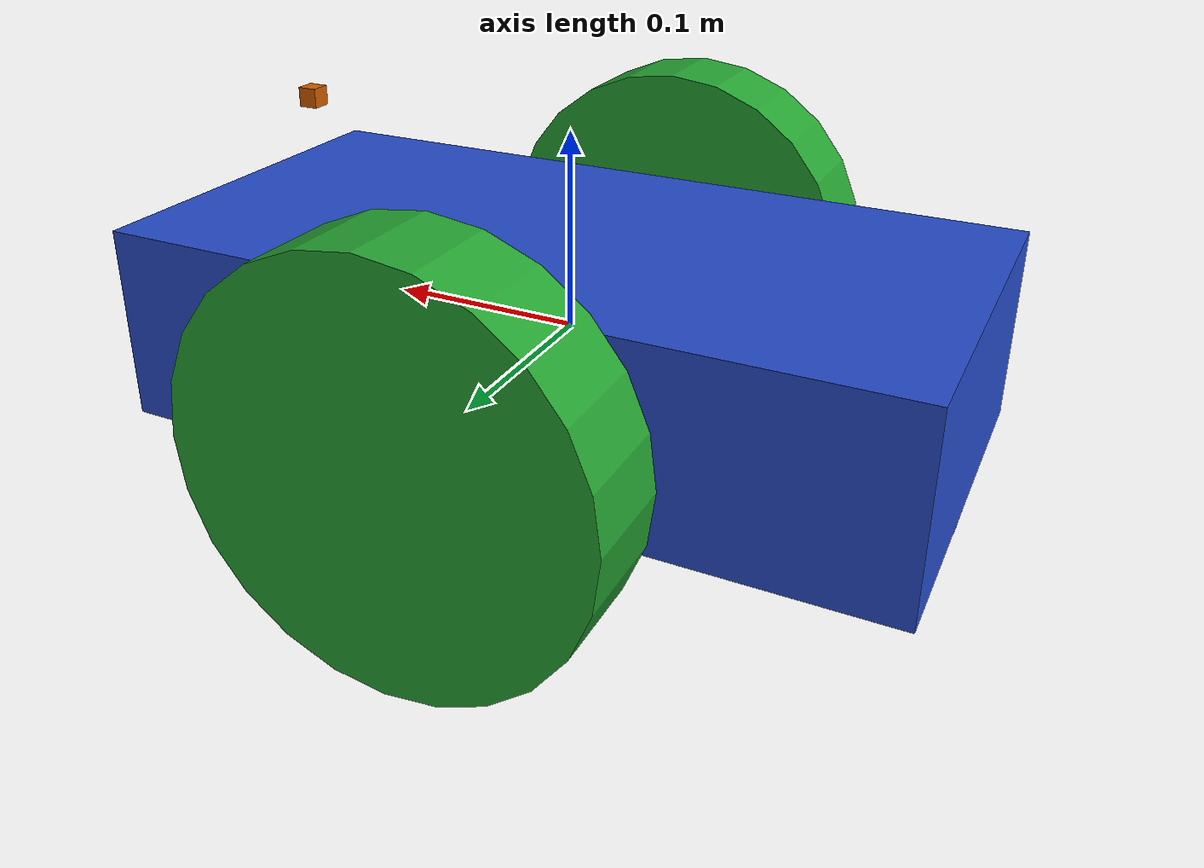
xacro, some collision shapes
<?xml version='1.0'?>

<robot name="udacity_bot" xmlns:xacro="http://www.ros.org/wiki/xacro">
<xacro:include filename="$(find udacity_bot)/urdf/udacity_bot.gazebo" />
<xacro:include filename="$(find udacity_bot)/urdf/udacity_materials.xacro" />

  <link name="robot_footprint"></link>

  <joint name="robot_footprint_joint" type="fixed">
    <origin xyz="0 0 0" rpy="0 0 0" />
    <parent link="robot_footprint"/>
    <child link="chassis" />
  </joint>

  <!-- chassis link -->
  <link name='chassis'>
    <pose>0 0 0.1 0 0 0</pose>

    <inertial>
      <mass value="15.0"/>
      <origin xyz="0.0 0 0" rpy=" 0 0 0"/>
      <inertia
          ixx="0.1" ixy="0" ixz="0"
          iyy="0.1" iyz="0"
          izz="0.1"
      />
    </inertial>

    <collision name='collision'>
      <origin xyz="0 0 0" rpy=" 0 0 0"/>
      <geometry>
        <box size=".4 .2 .1"/>
      </geometry>
    </collision>

    <visual name='chassis_visual'>
      <origin xyz="0 0 0" rpy=" 0 0 0"/>
      <geometry>
        <box size=".4 .2 .1"/>
      </geometry>
      <material name="blue"/>
    </visual>

    <collision name='back_caster_collision'>
      <origin xyz="-0.15 0 -0.05" rpy=" 0 0 0"/>
      <geometry>
        <sphere radius="0.05"/>
      </geometry>
      <surface>
        <friction>
          <ode>
            <mu>0</mu>
            <mu2>0</mu2>
            <slip1>1.0</slip1>
            <slip2>1.0</slip2>
          </ode>
        </friction>
      </surface>
    </collision>

    <visual name='back_caster_visual'>
      <origin xyz="-0.15 0 -0.05" rpy=" 0 0 0"/>
      <geometry>
        <sphere radius="0.05"/>
      </geometry>
    </visual>

    <collision name='front_caster_collision'>
      <origin xyz="0.15 0 -0.05" rpy=" 0 0 0"/>
      <geometry>
        <sphere radius="0.05"/>
      </geometry>
      <surface>
        <friction>
          <ode>
            <mu>0</mu>
            <mu2>0</mu2>
            <slip1>1.0</slip1>
            <slip2>1.0</slip2>
          </ode>
        </friction>
      </surface>
    </collision>

    <visual name='front_caster_visual'>
      <origin xyz="0.15 0 -0.05" rpy=" 0 0 0"/>
      <geometry>
        <sphere radius="0.05"/>
      </geometry>
    </visual>
  </link>

  <!-- left Wheel link -->
  <link name="left_wheel">
    <pose>0 0 0 0 1.5707 1.5707</pose>

    <inertial>
      <mass value="5.0"/>
      <origin xyz="0 0 0" rpy=" 0 1.5707 1.5707"/>
      <inertia
          ixx="0.1" ixy="0" ixz="0"
          iyy="0.1" iyz="0"
          izz="0.1"
      />
    </inertial>

    <collision name="collision">
      <origin xyz="0 0 0" rpy=" 0 1.5707 1.5707"/>
      <geometry>
        <cylinder length="0.05" radius="0.1"/>
      </geometry>
    </collision>

    <visual name="visual">
      <origin xyz="0 0 0" rpy=" 0 1.5707 1.5707"/>
      <geometry>
        <cylinder length="0.05" radius="0.1"/>
      </geometry>
      <material name="green"/>
    </visual>
  </link>

  <!-- right Wheel link -->
  <link name="right_wheel">
    <pose>0 0 0 0 -1.5707 1.5707</pose>

    <inertial>
      <mass value="5.0"/>
      <origin xyz="0 0 0" rpy=" 0 -1.5707 1.5707"/>
      <inertia
          ixx="0.1" ixy="0" ixz="0"
          iyy="0.1" iyz="0"
          izz="0.1"
      />
    </inertial>

    <collision name="collision">
      <origin xyz="0 0 0" rpy=" 0 -1.5707 1.5707"/>
      <geometry>
        <cylinder length="0.05" radius="0.1"/>
      </geometry>
    </collision>

    <visual name="visual">
      <origin xyz="0 0 0" rpy=" 0 -1.5707 1.5707"/>
      <geometry>
        <cylinder length="0.05" radius="0.1"/>
      </geometry>
      <material name="green"/>
    </visual>
  </link>

  <!-- camera link -->
  <link name='camera'>
    <pose>0 0 0 0 0 0</pose>

    <inertial>
      <mass value="0.1"/>
      <origin xyz="0.0 0 0" rpy=" 0 0 0"/>
      <inertia
          ixx="1e-6" ixy="0" ixz="0"
          iyy="1e-6" iyz="0"
          izz="1e-6"
      />
    </inertial>

    <collision name='collision'>
      <origin xyz="0 0 0" rpy=" 0 0 0"/>
      <geometry>
        <box size=".05 .05 .05"/>
      </geometry>
    </collision>

    <visual name='chassis_visual'>
      <origin xyz="0 0 0" rpy=" 0 0 0"/>
      <geometry>
        <box size=".05 .05 .05"/>
      </geometry>
      <material name="red"/>
    </visual>
  </link>

  <!-- laser rangefinder link -->
  <link name='hokuyo'>
    <pose>0 0 0 0 0 0</pose>

    <inertial>
      <mass value="0.1"/>
      <origin xyz="0.0 0 0" rpy=" 0 0 0"/>
      <inertia
          ixx="1e-6" ixy="0" ixz="0"
          iyy="1e-6" iyz="0"
          izz="1e-6"
      />
    </inertial>

    <collision name='collision'>
      <origin xyz="0 0 0" rpy=" 0 0 0"/>
      <geometry>
        <box size=".01 .01 .01"/>
      </geometry>
    </collision>

    <visual name='chassis_visual'>
      <origin xyz="0 0 0" rpy=" 0 0 0"/>
      <geometry>
        <mesh filename="package://udacity_bot/meshes/hokuyo.dae"/>
      </geometry>
    </visual>
  </link>

  <!-- left wheel joint -->
  <joint type="continuous" name="left_wheel_hinge">
    <origin xyz="0 0.15 0" rpy="0 0 0"/>
    <child link="left_wheel"/>
    <parent link="chassis"/>
    <axis xyz="0 1 0" rpy="0 0 0"/>
    <limit effort="10000" velocity="1000"/>
    <joint_properties damping="1.0" friction="1.0"/>
  </joint>

  <!-- right wheel joint -->
  <joint type="continuous" name="right_wheel_hinge">
    <origin xyz="0 -0.15 0" rpy="0 0 0"/>
    <child link="right_wheel"/>
    <parent link="chassis"/>
    <axis xyz="0 1 0" rpy="0 0 0"/>
    <limit effort="10000" velocity="1000"/>
    <joint_properties damping="1.0" friction="1.0"/>
  </joint>

  <!-- camera joint -->
  <joint type="fixed" name="camera_joint">
    <origin xyz="0.2 0 0" rpy="0 0 0"/>
    <child link="camera"/>
    <parent link="chassis"/>
    <axis xyz="0 1 0" rpy="0 0 0"/>
    <limit effort="10000" velocity="1000"/>
    <joint_properties damping="1.0" friction="1.0"/>
  </joint>

  <!-- laser rangefinder joint -->
  <joint type="fixed" name="hokuyo_joint">
    <origin xyz="0.15 0 0.1" rpy="0 0 0"/>
    <child link="hokuyo"/>
    <parent link="chassis"/>
    <axis xyz="0 1 0" rpy="0 0 0"/>
    <limit effort="10000" velocity="1000"/>
    <joint_properties damping="1.0" friction="1.0"/>
  </joint>

</robot>
